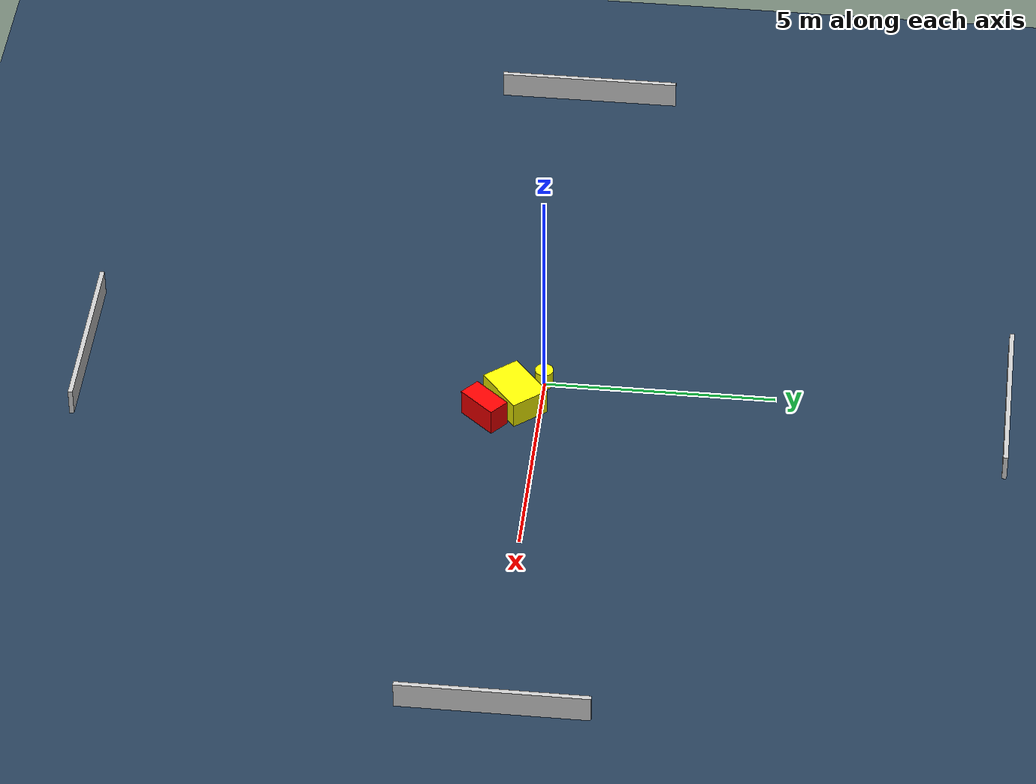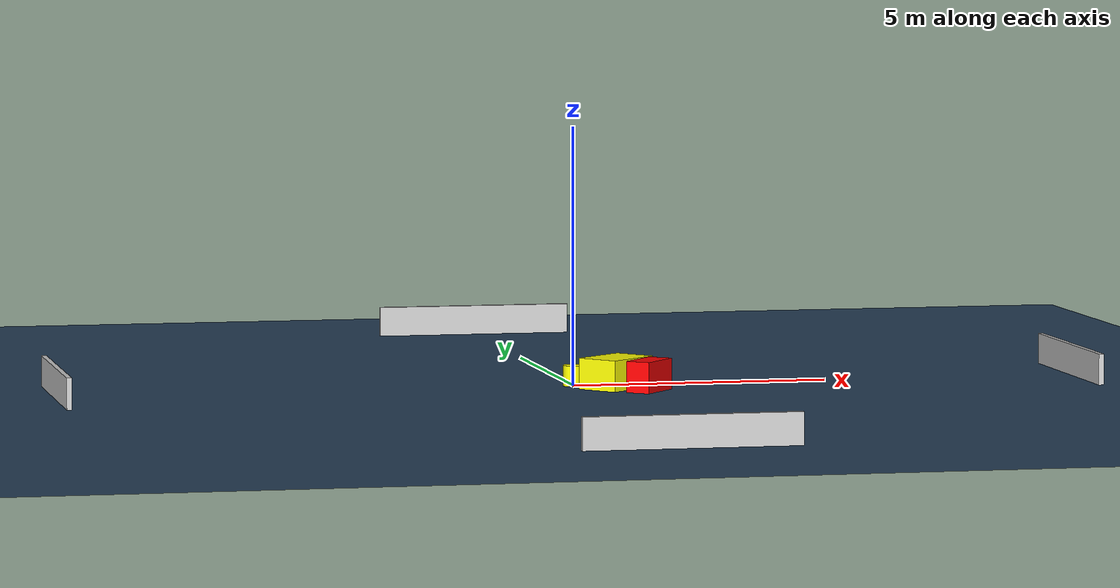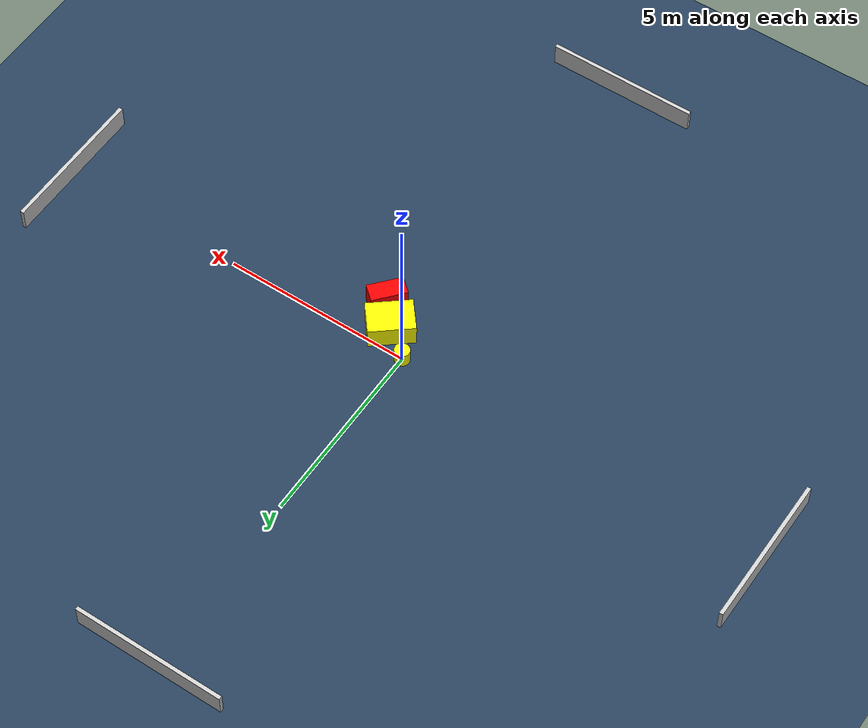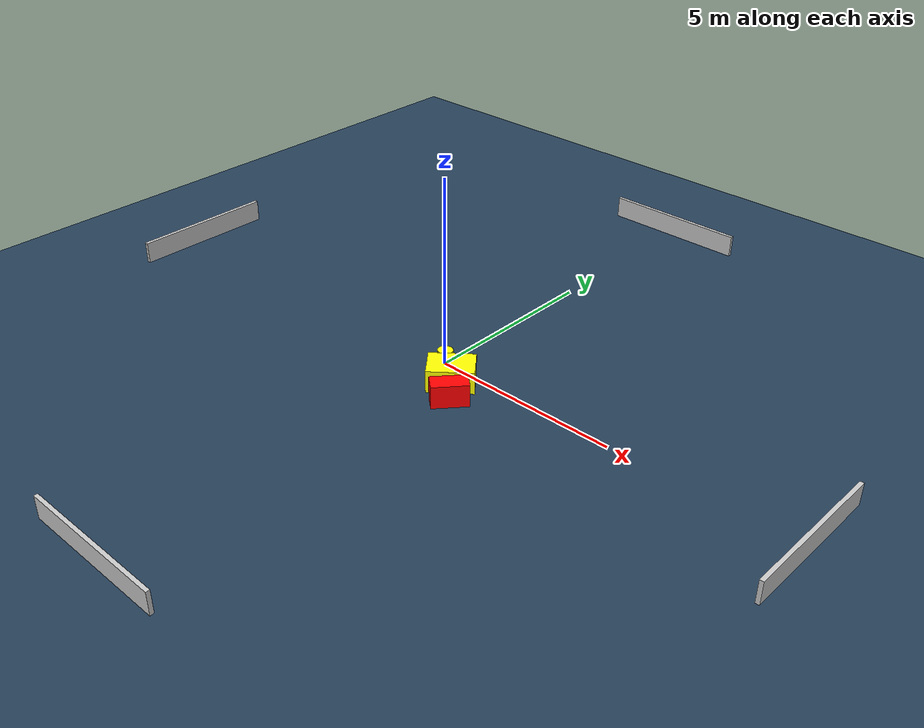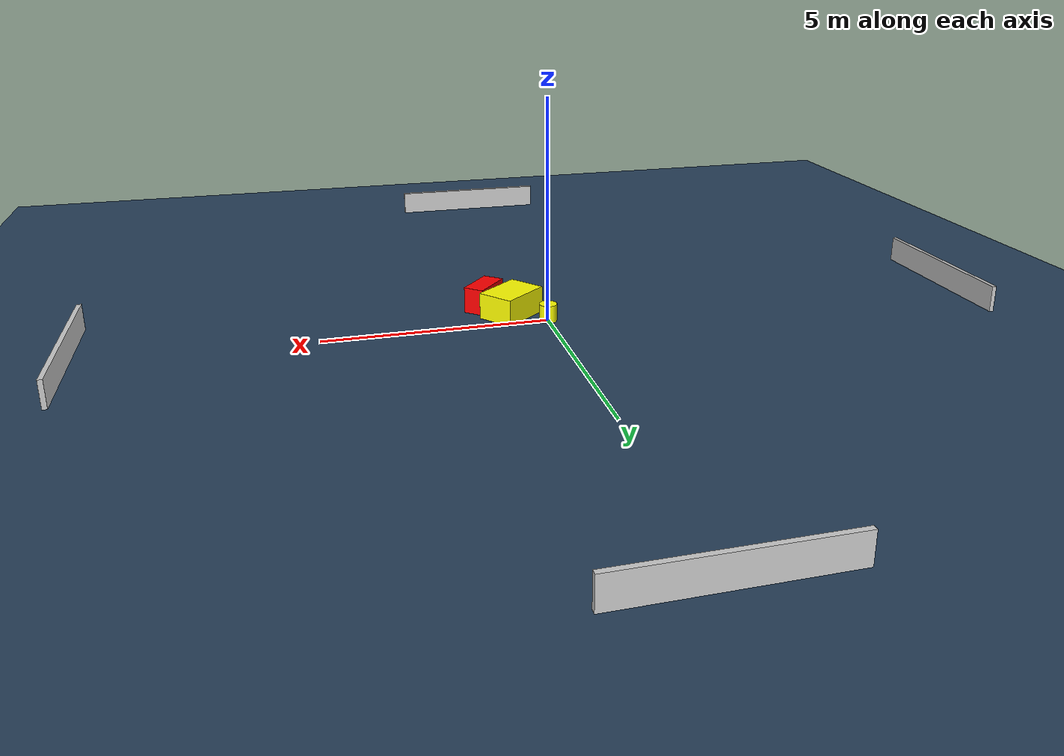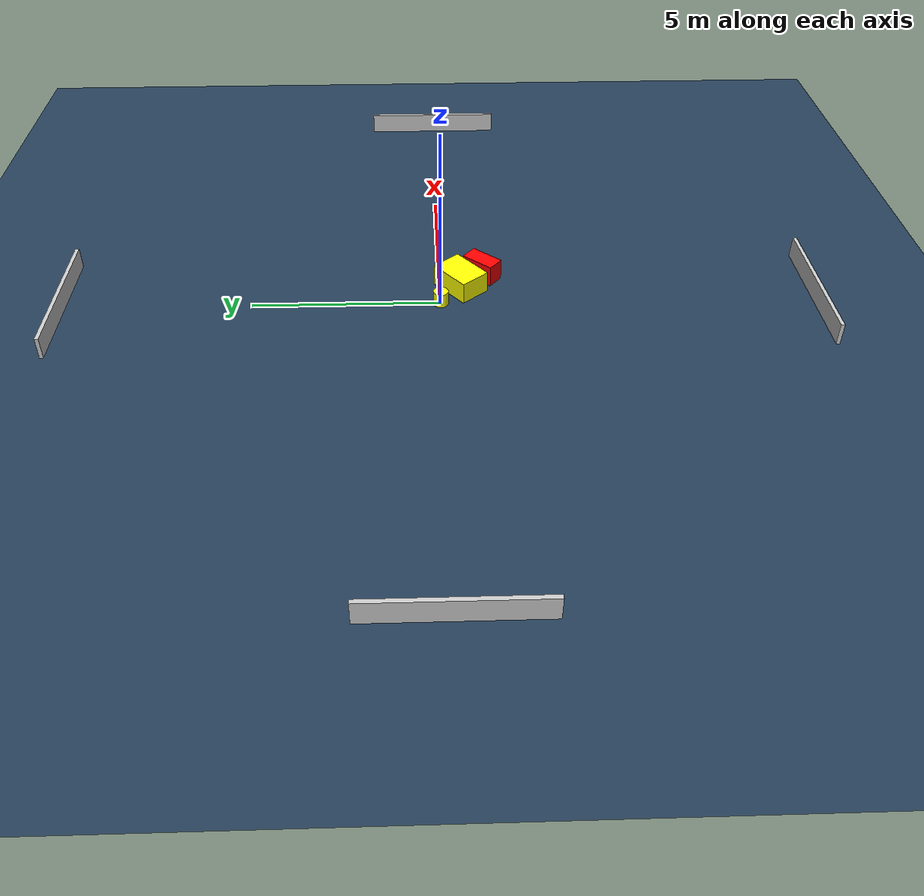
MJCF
<?xml version="1.0" ?>
<mujoco model="generated_environment">
  <option timestep="0.01" integrator="RK4" cone="elliptic"/>
  <default>
    <geom density="1"/>
  </default>
  <asset>
    <texture builtin="gradient" height="3072" name="skybox" rgb1="0.3 0.5 0.7" rgb2="0 0 0" type="skybox" width="512"/>
    <texture builtin="checker" height="300" name="groundplane" rgb1="0.2 0.3 0.4" rgb2="0.1 0.2 0.3" type="2d" width="300"/>
    <material name="groundplane" reflectance="0.2" texrepeat="5 5" texture="groundplane"/>
  </asset>
  <worldbody>
    <light dir="0 0 -1" directional="true" pos="0 0 1.5"/>
    <geom condim="3" friction="0.5 0.005 0.001" material="groundplane" name="floor" pos="0 0 0" size="0 0 0.05" type="plane"/>
    <body name="walls">
      <geom name="wall_1" condim="4" pos="-10.0 0.0 0.3" rgba="0.800000011920929 0.800000011920929 0.800000011920929 1.0" size="0.05 2.0 0.3" type="box"/>
      <geom name="wall_2" condim="4" pos="10.0 0.0 0.3" rgba="0.800000011920929 0.800000011920929 0.800000011920929 1.0" size="0.05 2.0 0.3" type="box"/>
      <geom name="wall_3" condim="4" pos="0.0 -10.0 0.3" rgba="0.800000011920929 0.800000011920929 0.800000011920929 1.0" size="2.0 0.05 0.3" type="box"/>
      <geom name="wall_4" condim="4" pos="0.0 10.0 0.3" rgba="0.800000011920929 0.800000011920929 0.800000011920929 1.0" size="2.0 0.05 0.3" type="box"/>
    </body>
    <body name="robot">
      <joint name="joint_x" type="slide" pos="0 0 0" axis="1 0 0"/>
      <joint name="joint_y" type="slide" pos="0 0 0" axis="0 1 0"/>
      <geom name="robot" type="cylinder" pos="0.0 0.0 0.2" size="0.2 0.2 0.0" mass="5.0" friction="1.0 0.005 0.0001" condim="4" rgba="1.0 1.0 0.0 1.0"/>
    </body>
    <body name="obstacle_1_movable">
      <geom name="obstacle_1_movable" condim="4" pos="0.7188336582829047 -0.5524595303751767 0.3" euler="0 0 309.52484054908086" friction="0.0 0.005 0.001" rgba="1.0 1.0 0.0 1.0" size="0.43046548996779016 0.5940379225130196 0.3" type="box" mass="0.1"/>
      <joint type="free"/>
    </body>
    <body name="obstacle_2_static">
      <geom name="obstacle_2_static" condim="4" pos="1.2340933035867427 -1.1612958543105936 0.3" euler="0 0 49.45264508380001" friction="0.0 0.005 0.001" rgba="1.0 0.0 0.0 1.0" size="0.4683822816252604 0.23943097527964985 0.3" type="box"/>
    </body>
  </worldbody>
  <actuator>
    <motor name="actuator_x" joint="joint_x" gear="1" ctrlrange="-1 1"/>
    <motor name="actuator_y" joint="joint_y" gear="1" ctrlrange="-1 1"/>
  </actuator>
</mujoco>
